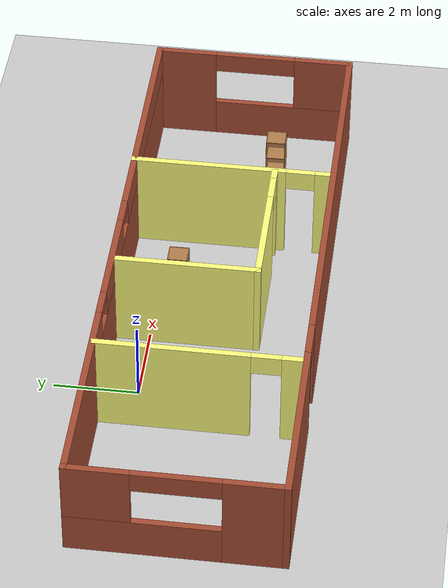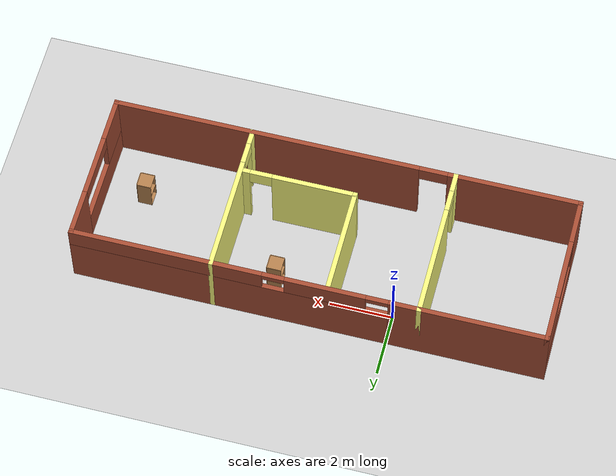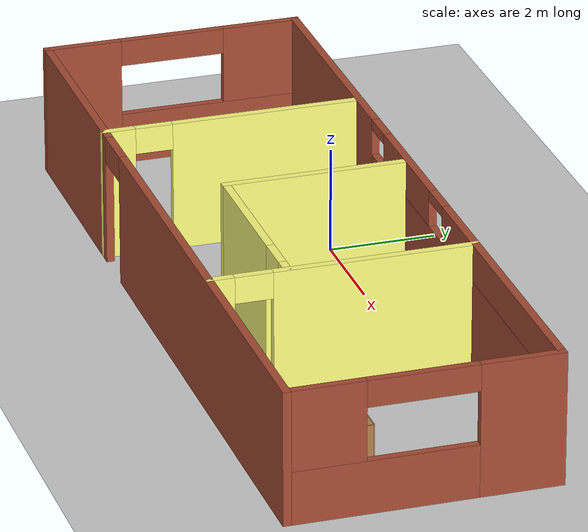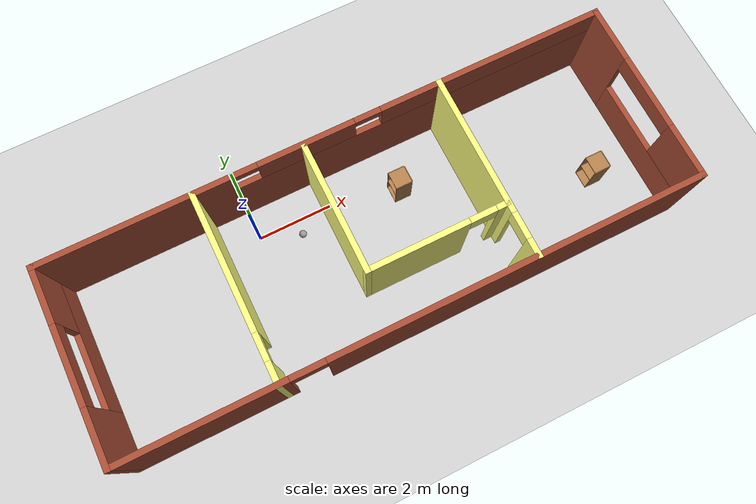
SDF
<sdf version="1.6">
 <world name="default">
  <model name="ground_plane">
   <static>1</static>
   <link name="link">
    <collision name="collision">
     <geometry><plane><normal>0 0 1</normal><size>100 100</size></plane></geometry>
     <surface><friction><ode><mu>100</mu><mu2>50</mu2></ode></friction></surface>
    </collision>
    <visual name="visual">
     <cast_shadows>0</cast_shadows>
     <geometry><plane><normal>0 0 1</normal><size>100 100</size></plane></geometry>
     <material>
      <script><uri>file://media/materials/scripts/gazebo.material</uri><name>Gazebo/Grey</name></script>
     </material>
    </visual>
   </link>
  </model>
  <model name="mybuilding">
   <pose>2.50811 -1.56131 0 0 -0 0</pose>
   <link name="Wall_1">
    <pose>0 2.425 0 0 -0 0</pose>
    <visual name="Wall_1_Visual_0">
     <pose>-5.01931 0 1.25 0 -0 0</pose>
     <geometry><box><size>4.96139 0.15 2.5</size></box></geometry>
     <material>
      <script><uri>file://media/materials/scripts/gazebo.material</uri><name>Gazebo/Bricks</name></script>
      <ambient>1 1 1 1</ambient>
     </material>
     <meta><layer>0</layer></meta>
    </visual>
    <collision name="Wall_1_Collision_0">
     <geometry><box><size>4.96139 0.15 2.5</size></box></geometry>
     <pose>-5.01931 0 1.25 0 -0 0</pose>
    </collision>
    <visual name="Wall_1_Visual_1">
     <pose>2.48069 0 0.9 0 -0 0</pose>
     <geometry><box><size>10.0386 0.15 1.8</size></box></geometry>
     <material>
      <script><uri>file://media/materials/scripts/gazebo.material</uri><name>Gazebo/Bricks</name></script>
      <ambient>1 1 1 1</ambient>
     </material>
     <meta><layer>0</layer></meta>
    </visual>
    <collision name="Wall_1_Collision_1">
     <geometry><box><size>10.0386 0.15 1.8</size></box></geometry>
     <pose>2.48069 0 0.9 0 -0 0</pose>
    </collision>
    <visual name="Wall_1_Visual_2">
     <pose>-0.568551 0 2.15 0 -0 0</pose>
     <geometry><box><size>2.54013 0.15 0.7</size></box></geometry>
     <material>
      <script><uri>file://media/materials/scripts/gazebo.material</uri><name>Gazebo/Bricks</name></script>
      <ambient>1 1 1 1</ambient>
     </material>
     <meta><layer>0</layer></meta>
    </visual>
    <collision name="Wall_1_Collision_2">
     <geometry><box><size>2.54013 0.15 0.7</size></box></geometry>
     <pose>-0.568551 0 2.15 0 -0 0</pose>
    </collision>
    <visual name="Wall_1_Visual_3">
     <pose>4.45076 0 2.15 0 -0 0</pose>
     <geometry><box><size>6.09849 0.15 0.7</size></box></geometry>
     <material>
      <script><uri>file://media/materials/scripts/gazebo.material</uri><name>Gazebo/Bricks</name></script>
      <ambient>1 1 1 1</ambient>
     </material>
     <meta><layer>0</layer></meta>
    </visual>
    <collision name="Wall_1_Collision_3">
     <geometry><box><size>6.09849 0.15 0.7</size></box></geometry>
     <pose>4.45076 0 2.15 0 -0 0</pose>
    </collision>
    <visual name="Wall_1_Visual_4">
     <pose>-2.18861 0 2.4 0 -0 0</pose>
     <geometry><box><size>0.7 0.15 0.2</size></box></geometry>
     <material>
      <script><uri>file://media/materials/scripts/gazebo.material</uri><name>Gazebo/Bricks</name></script>
      <ambient>1 1 1 1</ambient>
     </material>
     <meta><layer>0</layer></meta>
    </visual>
    <collision name="Wall_1_Collision_4">
     <geometry><box><size>0.7 0.15 0.2</size></box></geometry>
     <pose>-2.18861 0 2.4 0 -0 0</pose>
    </collision>
    <visual name="Wall_1_Visual_5">
     <pose>1.05151 0 2.4 0 -0 0</pose>
     <geometry><box><size>0.7 0.15 0.2</size></box></geometry>
     <material>
      <script><uri>file://media/materials/scripts/gazebo.material</uri><name>Gazebo/Bricks</name></script>
      <ambient>1 1 1 1</ambient>
     </material>
     <meta><layer>0</layer></meta>
    </visual>
    <collision name="Wall_1_Collision_5">
     <geometry><box><size>0.7 0.15 0.2</size></box></geometry>
     <pose>1.05151 0 2.4 0 -0 0</pose>
    </collision>
   </link>
   <link name="Wall_16">
    <pose>1.15591 -1.00344 0 0 -0 3.14159</pose>
    <visual name="Wall_16_Visual_0">
     <pose>-1.70833 0 1.25 0 -0 0</pose>
     <geometry><box><size>0.33335 0.15 2.5</size></box></geometry>
     <material>
      <script><uri>file://media/materials/scripts/gazebo.material</uri><name>Gazebo/Grey</name></script>
      <ambient>1 1 0.498039 1</ambient>
     </material>
     <meta><layer>0</layer></meta>
    </visual>
    <collision name="Wall_16_Collision_0">
     <geometry><box><size>0.33335 0.15 2.5</size></box></geometry>
     <pose>-1.70833 0 1.25 0 -0 0</pose>
    </collision>
    <visual name="Wall_16_Visual_1">
     <pose>0.516675 0 1.25 0 -0 0</pose>
     <geometry><box><size>2.71665 0.15 2.5</size></box></geometry>
     <material>
      <script><uri>file://media/materials/scripts/gazebo.material</uri><name>Gazebo/Grey</name></script>
      <ambient>1 1 0.498039 1</ambient>
     </material>
     <meta><layer>0</layer></meta>
    </visual>
    <collision name="Wall_16_Collision_1">
     <geometry><box><size>2.71665 0.15 2.5</size></box></geometry>
     <pose>0.516675 0 1.25 0 -0 0</pose>
    </collision>
    <visual name="Wall_16_Visual_2">
     <pose>-1.19165 0 2.25 0 -0 0</pose>
     <geometry><box><size>0.7 0.15 0.5</size></box></geometry>
     <material>
      <script><uri>file://media/materials/scripts/gazebo.material</uri><name>Gazebo/Grey</name></script>
      <ambient>1 1 0.498039 1</ambient>
     </material>
     <meta><layer>0</layer></meta>
    </visual>
    <collision name="Wall_16_Collision_2">
     <geometry><box><size>0.7 0.15 0.5</size></box></geometry>
     <pose>-1.19165 0 2.25 0 -0 0</pose>
    </collision>
   </link>
   <link name="Wall_2">
    <pose>7.425 0 0 0 0 -1.5708</pose>
    <visual name="Wall_2_Visual_0">
     <pose>-1.73467 0 1.25 0 -0 0</pose>
     <geometry><box><size>1.53065 0.15 2.5</size></box></geometry>
     <material>
      <script><uri>file://media/materials/scripts/gazebo.material</uri><name>Gazebo/Bricks</name></script>
      <ambient>1 1 1 1</ambient>
     </material>
     <meta><layer>0</layer></meta>
    </visual>
    <collision name="Wall_2_Collision_0">
     <geometry><box><size>1.53065 0.15 2.5</size></box></geometry>
     <pose>-1.73467 0 1.25 0 -0 0</pose>
    </collision>
    <visual name="Wall_2_Visual_1">
     <pose>0.765326 0 0.5 0 -0 0</pose>
     <geometry><box><size>3.46935 0.15 1</size></box></geometry>
     <material>
      <script><uri>file://media/materials/scripts/gazebo.material</uri><name>Gazebo/Bricks</name></script>
      <ambient>1 1 1 1</ambient>
     </material>
     <meta><layer>0</layer></meta>
    </visual>
    <collision name="Wall_2_Collision_1">
     <geometry><box><size>3.46935 0.15 1</size></box></geometry>
     <pose>0.765326 0 0.5 0 -0 0</pose>
    </collision>
    <visual name="Wall_2_Visual_2">
     <pose>1.76533 0 1.75 0 -0 0</pose>
     <geometry><box><size>1.46935 0.15 1.5</size></box></geometry>
     <material>
      <script><uri>file://media/materials/scripts/gazebo.material</uri><name>Gazebo/Bricks</name></script>
      <ambient>1 1 1 1</ambient>
     </material>
     <meta><layer>0</layer></meta>
    </visual>
    <collision name="Wall_2_Collision_2">
     <geometry><box><size>1.46935 0.15 1.5</size></box></geometry>
     <pose>1.76533 0 1.75 0 -0 0</pose>
    </collision>
    <visual name="Wall_2_Visual_3">
     <pose>0.030652 0 2.25 0 -0 0</pose>
     <geometry><box><size>2 0.15 0.5</size></box></geometry>
     <material>
      <script><uri>file://media/materials/scripts/gazebo.material</uri><name>Gazebo/Bricks</name></script>
      <ambient>1 1 1 1</ambient>
     </material>
     <meta><layer>0</layer></meta>
    </visual>
    <collision name="Wall_2_Collision_3">
     <geometry><box><size>2 0.15 0.5</size></box></geometry>
     <pose>0.030652 0 2.25 0 -0 0</pose>
    </collision>
   </link>
   <link name="Wall_21">
    <collision name="Wall_21_Collision">
     <geometry><box><size>3.5 0.15 2.5</size></box></geometry>
     <pose>0 0 1.25 0 -0 0</pose>
    </collision>
    <visual name="Wall_21_Visual">
     <pose>0 0 1.25 0 -0 0</pose>
     <geometry><box><size>3.5 0.15 2.5</size></box></geometry>
     <material>
      <script><uri>file://media/materials/scripts/gazebo.material</uri><name>Gazebo/Grey</name></script>
      <ambient>1 1 0.498039 1</ambient>
     </material>
     <meta><layer>0</layer></meta>
    </visual>
    <pose>-0.644088 0.671555 0 0 -0 1.5708</pose>
   </link>
   <link name="Wall_3">
    <pose>0 -2.425 0 0 -0 3.14159</pose>
    <visual name="Wall_3_Visual_0">
     <pose>-2.58313 0 1.25 0 -0 0</pose>
     <geometry><box><size>9.83374 0.15 2.5</size></box></geometry>
     <material>
      <script><uri>file://media/materials/scripts/gazebo.material</uri><name>Gazebo/Bricks</name></script>
      <ambient>1 1 1 1</ambient>
     </material>
     <meta><layer>0</layer></meta>
    </visual>
    <collision name="Wall_3_Collision_0">
     <geometry><box><size>9.83374 0.15 2.5</size></box></geometry>
     <pose>-2.58313 0 1.25 0 -0 0</pose>
    </collision>
    <visual name="Wall_3_Visual_1">
     <pose>5.36687 0 1.25 0 -0 0</pose>
     <geometry><box><size>4.26626 0.15 2.5</size></box></geometry>
     <material>
      <script><uri>file://media/materials/scripts/gazebo.material</uri><name>Gazebo/Bricks</name></script>
      <ambient>1 1 1 1</ambient>
     </material>
     <meta><layer>0</layer></meta>
    </visual>
    <collision name="Wall_3_Collision_1">
     <geometry><box><size>4.26626 0.15 2.5</size></box></geometry>
     <pose>5.36687 0 1.25 0 -0 0</pose>
    </collision>
    <visual name="Wall_3_Visual_2">
     <pose>2.78374 0 2.25 0 -0 0</pose>
     <geometry><box><size>0.9 0.15 0.5</size></box></geometry>
     <material>
      <script><uri>file://media/materials/scripts/gazebo.material</uri><name>Gazebo/Bricks</name></script>
      <ambient>1 1 1 1</ambient>
     </material>
     <meta><layer>0</layer></meta>
    </visual>
    <collision name="Wall_3_Collision_2">
     <geometry><box><size>0.9 0.15 0.5</size></box></geometry>
     <pose>2.78374 0 2.25 0 -0 0</pose>
    </collision>
   </link>
   <link name="Wall_4">
    <pose>-7.425 0 0 0 -0 1.5708</pose>
    <visual name="Wall_4_Visual_0">
     <pose>-1.75772 0 1.25 0 -0 0</pose>
     <geometry><box><size>1.48456 0.15 2.5</size></box></geometry>
     <material>
      <script><uri>file://media/materials/scripts/gazebo.material</uri><name>Gazebo/Bricks</name></script>
      <ambient>1 1 1 1</ambient>
     </material>
     <meta><layer>0</layer></meta>
    </visual>
    <collision name="Wall_4_Collision_0">
     <geometry><box><size>1.48456 0.15 2.5</size></box></geometry>
     <pose>-1.75772 0 1.25 0 -0 0</pose>
    </collision>
    <visual name="Wall_4_Visual_1">
     <pose>0.742279 0 0.5 0 -0 0</pose>
     <geometry><box><size>3.51544 0.15 1</size></box></geometry>
     <material>
      <script><uri>file://media/materials/scripts/gazebo.material</uri><name>Gazebo/Bricks</name></script>
      <ambient>1 1 1 1</ambient>
     </material>
     <meta><layer>0</layer></meta>
    </visual>
    <collision name="Wall_4_Collision_1">
     <geometry><box><size>3.51544 0.15 1</size></box></geometry>
     <pose>0.742279 0 0.5 0 -0 0</pose>
    </collision>
    <visual name="Wall_4_Visual_2">
     <pose>1.74228 0 1.75 0 -0 0</pose>
     <geometry><box><size>1.51544 0.15 1.5</size></box></geometry>
     <material>
      <script><uri>file://media/materials/scripts/gazebo.material</uri><name>Gazebo/Bricks</name></script>
      <ambient>1 1 1 1</ambient>
     </material>
     <meta><layer>0</layer></meta>
    </visual>
    <collision name="Wall_4_Collision_2">
     <geometry><box><size>1.51544 0.15 1.5</size></box></geometry>
     <pose>1.74228 0 1.75 0 -0 0</pose>
    </collision>
    <visual name="Wall_4_Visual_3">
     <pose>-0.015443 0 2.25 0 -0 0</pose>
     <geometry><box><size>2 0.15 0.5</size></box></geometry>
     <material>
      <script><uri>file://media/materials/scripts/gazebo.material</uri><name>Gazebo/Bricks</name></script>
      <ambient>1 1 1 1</ambient>
     </material>
     <meta><layer>0</layer></meta>
    </visual>
    <collision name="Wall_4_Collision_3">
     <geometry><box><size>2 0.15 0.5</size></box></geometry>
     <pose>-0.015443 0 2.25 0 -0 0</pose>
    </collision>
   </link>
   <link name="Wall_6">
    <pose>-3.492 0 0 0 0 -1.5708</pose>
    <visual name="Wall_6_Visual_0">
     <pose>-0.66539 0 1.25 0 -0 0</pose>
     <geometry><box><size>3.66922 0.15 2.5</size></box></geometry>
     <material>
      <script><uri>file://media/materials/scripts/gazebo.material</uri><name>Gazebo/Grey</name></script>
      <ambient>1 1 0.498039 1</ambient>
     </material>
     <meta><layer>0</layer></meta>
    </visual>
    <collision name="Wall_6_Collision_0">
     <geometry><box><size>3.66922 0.15 2.5</size></box></geometry>
     <pose>-0.66539 0 1.25 0 -0 0</pose>
    </collision>
    <visual name="Wall_6_Visual_1">
     <pose>2.18461 0 1.25 0 -0 0</pose>
     <geometry><box><size>0.63078 0.15 2.5</size></box></geometry>
     <material>
      <script><uri>file://media/materials/scripts/gazebo.material</uri><name>Gazebo/Grey</name></script>
      <ambient>1 1 0.498039 1</ambient>
     </material>
     <meta><layer>0</layer></meta>
    </visual>
    <collision name="Wall_6_Collision_1">
     <geometry><box><size>0.63078 0.15 2.5</size></box></geometry>
     <pose>2.18461 0 1.25 0 -0 0</pose>
    </collision>
    <visual name="Wall_6_Visual_2">
     <pose>1.51922 0 2.25 0 -0 0</pose>
     <geometry><box><size>0.7 0.15 0.5</size></box></geometry>
     <material>
      <script><uri>file://media/materials/scripts/gazebo.material</uri><name>Gazebo/Grey</name></script>
      <ambient>1 1 0.498039 1</ambient>
     </material>
     <meta><layer>0</layer></meta>
    </visual>
    <collision name="Wall_6_Collision_2">
     <geometry><box><size>0.7 0.15 0.5</size></box></geometry>
     <pose>1.51922 0 2.25 0 -0 0</pose>
    </collision>
   </link>
   <link name="Wall_8">
    <pose>3.0055 0 0 0 0 -1.5708</pose>
    <visual name="Wall_8_Visual_0">
     <pose>-0.61249 0 1.25 0 -0 0</pose>
     <geometry><box><size>3.77502 0.15 2.5</size></box></geometry>
     <material>
      <script><uri>file://media/materials/scripts/gazebo.material</uri><name>Gazebo/Grey</name></script>
      <ambient>1 1 0.498039 1</ambient>
     </material>
     <meta><layer>0</layer></meta>
    </visual>
    <collision name="Wall_8_Collision_0">
     <geometry><box><size>3.77502 0.15 2.5</size></box></geometry>
     <pose>-0.61249 0 1.25 0 -0 0</pose>
    </collision>
    <visual name="Wall_8_Visual_1">
     <pose>2.23751 0 1.25 0 -0 0</pose>
     <geometry><box><size>0.52498 0.15 2.5</size></box></geometry>
     <material>
      <script><uri>file://media/materials/scripts/gazebo.material</uri><name>Gazebo/Grey</name></script>
      <ambient>1 1 0.498039 1</ambient>
     </material>
     <meta><layer>0</layer></meta>
    </visual>
    <collision name="Wall_8_Collision_1">
     <geometry><box><size>0.52498 0.15 2.5</size></box></geometry>
     <pose>2.23751 0 1.25 0 -0 0</pose>
    </collision>
    <visual name="Wall_8_Visual_2">
     <pose>1.62502 0 2.25 0 -0 0</pose>
     <geometry><box><size>0.7 0.15 0.5</size></box></geometry>
     <material>
      <script><uri>file://media/materials/scripts/gazebo.material</uri><name>Gazebo/Grey</name></script>
      <ambient>1 1 0.498039 1</ambient>
     </material>
     <meta><layer>0</layer></meta>
    </visual>
    <collision name="Wall_8_Collision_2">
     <geometry><box><size>0.7 0.15 0.5</size></box></geometry>
     <pose>1.62502 0 2.25 0 -0 0</pose>
    </collision>
   </link>
   <static>1</static>
  </model>
  <model name="my_ball">
   <link name="link_0">
    <inertial>
     <mass>1</mass>
     <inertia><ixx>0.1</ixx><ixy>0</ixy><ixz>0</ixz><iyy>0.1</iyy><iyz>0</iyz><izz>0.1</izz></inertia>
    </inertial>
    <visual name="visual">
     <geometry><sphere><radius>0.1</radius></sphere></geometry>
     <material>
      <lighting>1</lighting>
      <script><uri>file://media/materials/scripts/gazebo.material</uri><name>Gazebo/Grey</name></script>
      <ambient>1 1 1 1</ambient>
      <diffuse>1 1 1 1</diffuse>
      <specular>1 1 1 1</specular>
      <emissive>1 1 1 1</emissive>
      <shader type="vertex"><normal_map>__default__</normal_map></shader>
     </material>
    </visual>
    <collision name="collision">
     <geometry><sphere><radius>0.1</radius></sphere></geometry>
     <surface>
      <friction>
       <ode><mu>1</mu><mu2>1</mu2><fdir1>0 0 0</fdir1><slip1>0</slip1><slip2>0</slip2></ode>
       <torsional>
        <coefficient>1</coefficient>
        <patch_radius>0</patch_radius>
        <surface_radius>0</surface_radius>
        <use_patch_radius>1</use_patch_radius>
        <ode><slip>0</slip></ode>
       </torsional>
      </friction>
      <bounce><restitution_coefficient>0</restitution_coefficient><threshold>1e+06</threshold></bounce>
      <contact>
       <collide_without_contact>0</collide_without_contact>
       <collide_without_contact_bitmask>1</collide_without_contact_bitmask>
       <collide_bitmask>1</collide_bitmask>
       <ode>
        <soft_cfm>0</soft_cfm>
        <soft_erp>0.2</soft_erp>
        <kp>1e+13</kp>
        <kd>1</kd>
        <max_vel>0.01</max_vel>
        <min_depth>0</min_depth>
       </ode>
       <bullet>
        <split_impulse>1</split_impulse>
        <split_impulse_penetration_threshold>-0.01</split_impulse_penetration_threshold>
        <soft_cfm>0</soft_cfm>
        <soft_erp>0.2</soft_erp>
        <kp>1e+13</kp>
        <kd>1</kd>
       </bullet>
      </contact>
     </surface>
    </collision>
   </link>
   <static>0</static>
   <pose>1.0402 -0.409729 0.1 0 -0 0</pose>
  </model>
  <model name="cabinet_1">
   <static>1</static>
   <link name="cabinet_bottom_plate">
    <inertial>
     <pose>0 0 -1 0 -0 0</pose>
     <inertia><ixx>2.05</ixx><ixy>0</ixy><ixz>0</ixz><iyy>2.05</iyy><iyz>0</iyz><izz>2.05</izz></inertia>
     <mass>25</mass>
    </inertial>
    <collision name="cabinet_bottom_plate_geom">
     <pose>0 0 0.01 0 -0 0</pose>
     <geometry><box><size>0.45 0.45 0.02</size></box></geometry>
    </collision>
    <visual name="cabinet_bottom_plate_geom_visual">
     <pose>0 0 0.01 0 -0 0</pose>
     <geometry><box><size>0.45 0.45 0.02</size></box></geometry>
     <material>
      <script><uri>file://media/materials/scripts/gazebo.material</uri><name>Gazebo/Wood</name></script>
     </material>
    </visual>
    <collision name="cabinet_bottom_plate_geom_cabinet_back_plate">
     <pose>0.235 0 0.51 0 -0 0</pose>
     <geometry><box><size>0.02 0.45 1.02</size></box></geometry>
    </collision>
    <visual name="cabinet_bottom_plate_geom_cabinet_back_plate_visual">
     <pose>0.235 0 0.51 0 -0 0</pose>
     <geometry><box><size>0.02 0.45 1.02</size></box></geometry>
     <material>
      <script><uri>file://media/materials/scripts/gazebo.material</uri><name>Gazebo/Wood</name></script>
     </material>
    </visual>
    <collision name="cabinet_bottom_plate_geom_cabinet_left_plate">
     <pose>0 0.235 0.51 0 -0 0</pose>
     <geometry><box><size>0.45 0.02 1.02</size></box></geometry>
    </collision>
    <visual name="cabinet_bottom_plate_geom_cabinet_left_plate_visual">
     <pose>0 0.235 0.51 0 -0 0</pose>
     <geometry><box><size>0.45 0.02 1.02</size></box></geometry>
     <material>
      <script><uri>file://media/materials/scripts/gazebo.material</uri><name>Gazebo/Wood</name></script>
     </material>
    </visual>
    <collision name="cabinet_bottom_plate_geom_cabinet_middle_plate">
     <pose>0 0 0.51 0 -0 0</pose>
     <geometry><box><size>0.45 0.45 0.02</size></box></geometry>
    </collision>
    <visual name="cabinet_bottom_plate_geom_cabinet_middle_plate_visual">
     <pose>0 0 0.51 0 -0 0</pose>
     <geometry><box><size>0.45 0.45 0.02</size></box></geometry>
     <material>
      <script><uri>file://media/materials/scripts/gazebo.material</uri><name>Gazebo/Wood</name></script>
     </material>
    </visual>
    <collision name="cabinet_bottom_plate_geom_cabinet_right_plate">
     <pose>0 -0.235 0.51 0 -0 0</pose>
     <geometry><box><size>0.45 0.02 1.02</size></box></geometry>
    </collision>
    <visual name="cabinet_bottom_plate_geom_cabinet_right_plate_visual">
     <pose>0 -0.235 0.51 0 -0 0</pose>
     <geometry><box><size>0.45 0.02 1.02</size></box></geometry>
     <material>
      <script><uri>file://media/materials/scripts/gazebo.material</uri><name>Gazebo/Wood</name></script>
     </material>
    </visual>
    <collision name="cabinet_bottom_plate_geom_cabinet_top_plate">
     <pose>0 0 1.01 0 -0 0</pose>
     <geometry><box><size>0.45 0.45 0.02</size></box></geometry>
    </collision>
    <visual name="cabinet_bottom_plate_geom_cabinet_top_plate_visual">
     <pose>0 0 1.01 0 -0 0</pose>
     <geometry><box><size>0.45 0.45 0.02</size></box></geometry>
     <material>
      <script><uri>file://media/materials/scripts/gazebo.material</uri><name>Gazebo/Wood</name></script>
     </material>
    </visual>
   </link>
   <pose>3.8385 -0.428313 0 0 -0 0</pose>
  </model>
  <model name="cabinet_2">
   <static>1</static>
   <link name="cabinet_bottom_plate">
    <inertial>
     <pose>0 0 -1 0 -0 0</pose>
     <inertia><ixx>2.05</ixx><ixy>0</ixy><ixz>0</ixz><iyy>2.05</iyy><iyz>0</iyz><izz>2.05</izz></inertia>
     <mass>25</mass>
    </inertial>
    <collision name="cabinet_bottom_plate_geom">
     <pose>0 0 0.01 0 -0 0</pose>
     <geometry><box><size>0.45 0.45 0.02</size></box></geometry>
    </collision>
    <visual name="cabinet_bottom_plate_geom_visual">
     <pose>0 0 0.01 0 -0 0</pose>
     <geometry><box><size>0.45 0.45 0.02</size></box></geometry>
     <material>
      <script><uri>file://media/materials/scripts/gazebo.material</uri><name>Gazebo/Wood</name></script>
     </material>
    </visual>
    <collision name="cabinet_bottom_plate_geom_cabinet_back_plate">
     <pose>0.235 0 0.51 0 -0 0</pose>
     <geometry><box><size>0.02 0.45 1.02</size></box></geometry>
    </collision>
    <visual name="cabinet_bottom_plate_geom_cabinet_back_plate_visual">
     <pose>0.235 0 0.51 0 -0 0</pose>
     <geometry><box><size>0.02 0.45 1.02</size></box></geometry>
     <material>
      <script><uri>file://media/materials/scripts/gazebo.material</uri><name>Gazebo/Wood</name></script>
     </material>
    </visual>
    <collision name="cabinet_bottom_plate_geom_cabinet_left_plate">
     <pose>0 0.235 0.51 0 -0 0</pose>
     <geometry><box><size>0.45 0.02 1.02</size></box></geometry>
    </collision>
    <visual name="cabinet_bottom_plate_geom_cabinet_left_plate_visual">
     <pose>0 0.235 0.51 0 -0 0</pose>
     <geometry><box><size>0.45 0.02 1.02</size></box></geometry>
     <material>
      <script><uri>file://media/materials/scripts/gazebo.material</uri><name>Gazebo/Wood</name></script>
     </material>
    </visual>
    <collision name="cabinet_bottom_plate_geom_cabinet_middle_plate">
     <pose>0 0 0.51 0 -0 0</pose>
     <geometry><box><size>0.45 0.45 0.02</size></box></geometry>
    </collision>
    <visual name="cabinet_bottom_plate_geom_cabinet_middle_plate_visual">
     <pose>0 0 0.51 0 -0 0</pose>
     <geometry><box><size>0.45 0.45 0.02</size></box></geometry>
     <material>
      <script><uri>file://media/materials/scripts/gazebo.material</uri><name>Gazebo/Wood</name></script>
     </material>
    </visual>
    <collision name="cabinet_bottom_plate_geom_cabinet_right_plate">
     <pose>0 -0.235 0.51 0 -0 0</pose>
     <geometry><box><size>0.45 0.02 1.02</size></box></geometry>
    </collision>
    <visual name="cabinet_bottom_plate_geom_cabinet_right_plate_visual">
     <pose>0 -0.235 0.51 0 -0 0</pose>
     <geometry><box><size>0.45 0.02 1.02</size></box></geometry>
     <material>
      <script><uri>file://media/materials/scripts/gazebo.material</uri><name>Gazebo/Wood</name></script>
     </material>
    </visual>
    <collision name="cabinet_bottom_plate_geom_cabinet_top_plate">
     <pose>0 0 1.01 0 -0 0</pose>
     <geometry><box><size>0.45 0.45 0.02</size></box></geometry>
    </collision>
    <visual name="cabinet_bottom_plate_geom_cabinet_top_plate_visual">
     <pose>0 0 1.01 0 -0 0</pose>
     <geometry><box><size>0.45 0.45 0.02</size></box></geometry>
     <material>
      <script><uri>file://media/materials/scripts/gazebo.material</uri><name>Gazebo/Wood</name></script>
     </material>
    </visual>
   </link>
   <pose>8.56802 -2.30386 0 0 -0 0</pose>
  </model>
 </world>
</sdf>
